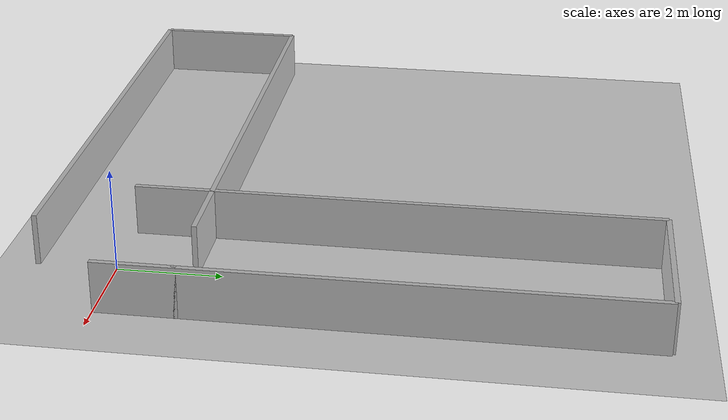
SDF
<?xml version="1.0" ?>
<sdf version="1.6">
  <world name="sharp_turn">
    <physics type="ode">
      <max_step_size>0.01</max_step_size>
      <real_time_factor>1</real_time_factor>
      <real_time_update_rate>100</real_time_update_rate>
    </physics>
    <gui><camera name="user_camera"><pose>-6 -6 10 0 0.9 0.78</pose></camera></gui>

    <include><uri>model://sun</uri></include>
    <include><uri>model://ground_plane</uri></include>

    <!-- L-shaped corridor: 10 m E-W then 10 m N-S, 3 m wide, with a sharp
         90 deg right turn at the origin. Tests the predictor: CV model will
         systematically miss the turn. -->
    <!-- E-W corridor: x in [-10, 0], centred on y=0 -->
    <model name="ew_top">
      <static>true</static><pose>-5 1.5 0.5 0 0 0</pose>
      <link name="link">
        <collision name="c"><geometry><box><size>10 0.1 1.0</size></box></geometry></collision>
        <visual name="v"><geometry><box><size>10 0.1 1.0</size></box></geometry></visual>
      </link>
    </model>
    <model name="ew_bot">
      <static>true</static><pose>-5 -1.5 0.5 0 0 0</pose>
      <link name="link">
        <collision name="c"><geometry><box><size>10 0.1 1.0</size></box></geometry></collision>
        <visual name="v"><geometry><box><size>10 0.1 1.0</size></box></geometry></visual>
      </link>
    </model>
    <!-- N-S corridor: y in [0, 10], centred on x=0 -->
    <model name="ns_left">
      <static>true</static><pose>-1.5 5 0.5 0 0 0</pose>
      <link name="link">
        <collision name="c"><geometry><box><size>0.1 10 1.0</size></box></geometry></collision>
        <visual name="v"><geometry><box><size>0.1 10 1.0</size></box></geometry></visual>
      </link>
    </model>
    <model name="ns_right">
      <static>true</static><pose>1.5 5 0.5 0 0 0</pose>
      <link name="link">
        <collision name="c"><geometry><box><size>0.1 10 1.0</size></box></geometry></collision>
        <visual name="v"><geometry><box><size>0.1 10 1.0</size></box></geometry></visual>
      </link>
    </model>
    <!-- corner patches to close the L -->
    <model name="corner_inner">
      <static>true</static><pose>1.5 1.5 0.5 0 0 0</pose>
      <link name="link">
        <collision name="c"><geometry><box><size>0.1 0.1 1.0</size></box></geometry></collision>
        <visual name="v"><geometry><box><size>0.1 0.1 1.0</size></box></geometry></visual>
      </link>
    </model>
    <model name="cap_west">
      <static>true</static><pose>-10 0 0.5 0 0 0</pose>
      <link name="link">
        <collision name="c"><geometry><box><size>0.1 3 1.0</size></box></geometry></collision>
        <visual name="v"><geometry><box><size>0.1 3 1.0</size></box></geometry></visual>
      </link>
    </model>
    <model name="cap_north">
      <static>true</static><pose>0 10 0.5 0 0 0</pose>
      <link name="link">
        <collision name="c"><geometry><box><size>3 0.1 1.0</size></box></geometry></collision>
        <visual name="v"><geometry><box><size>3 0.1 1.0</size></box></geometry></visual>
      </link>
    </model>

  </world>
</sdf>
